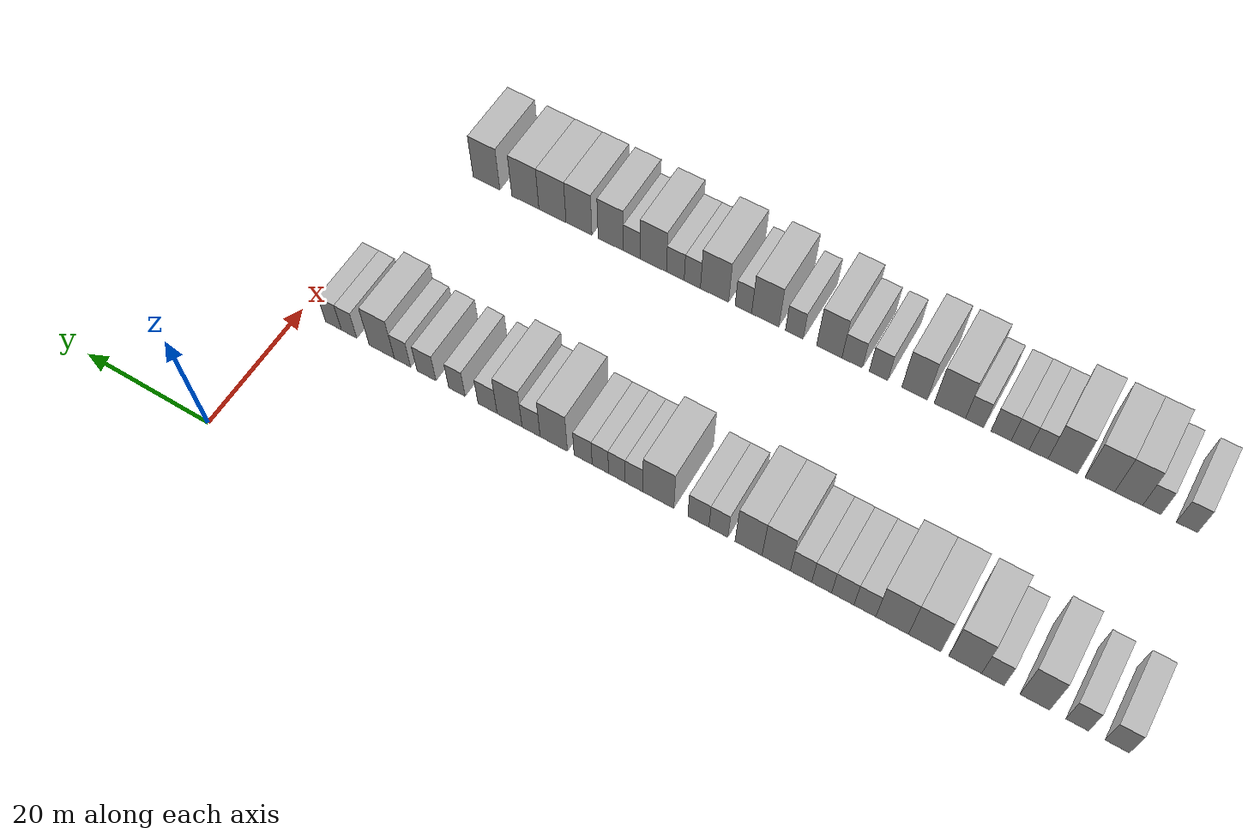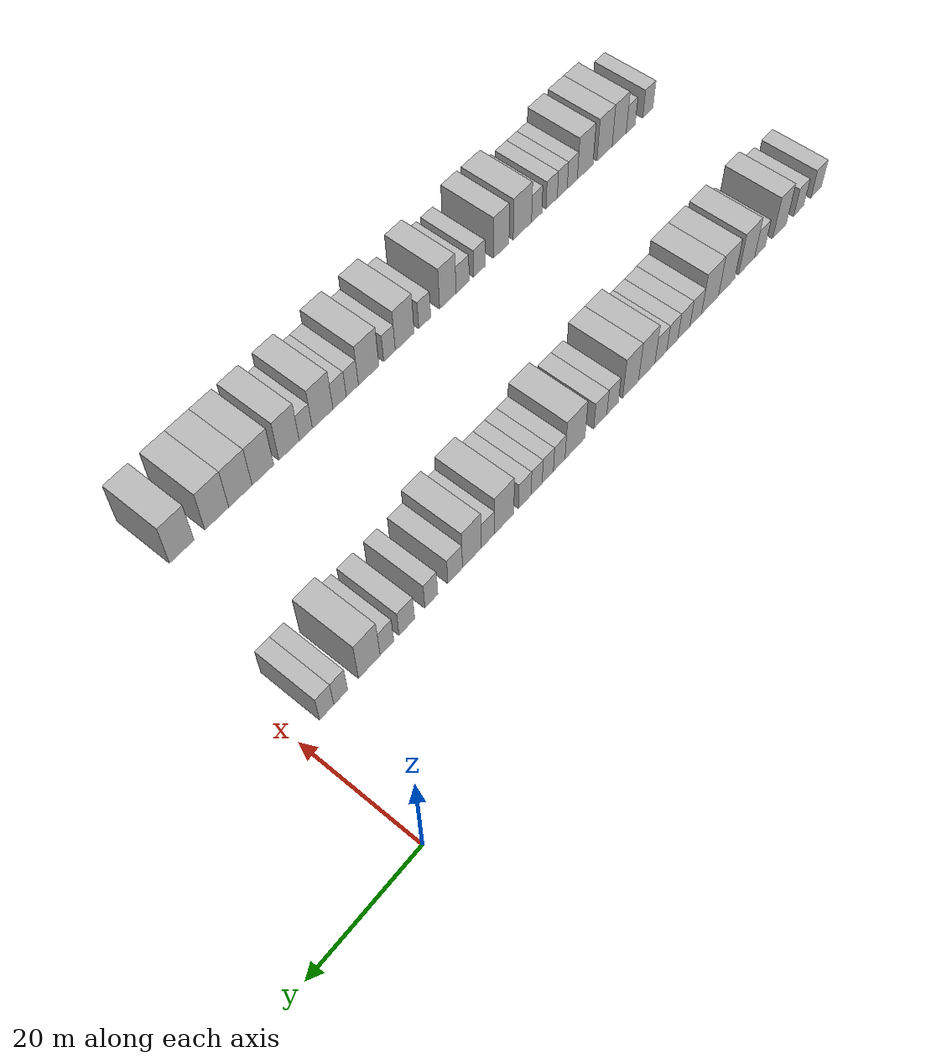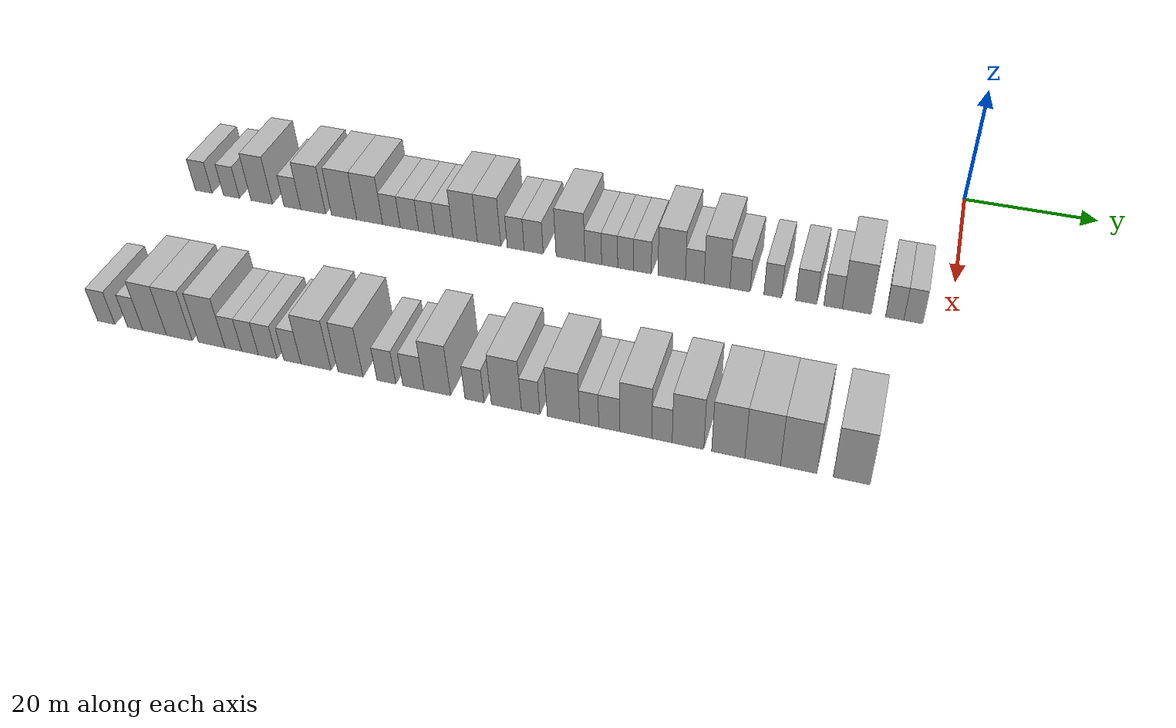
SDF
<sdf version="1.6">
 <world name="default">
  <model name="building_30">
   <static>1</static>
   <pose>25.0000 -115.3672 0 0.000000 0.000000 0.000000</pose>
   <link name="link">
    <pose>0 0 3.00 0 0 0</pose>
    <collision name="collision"><geometry><box><size>10.0000 2.9556 6.0000</size></box></geometry></collision>
    <visual name="visual">
     <cast_shadows>0</cast_shadows>
     <geometry><box><size>10.0000 2.9556 6.0000</size></box></geometry>
     <material>
      <script>
       <uri>model://HANNAS_wall/materials/scripts</uri>
       <uri>model://HANNAS_wall/materials/textures</uri>
       <name>vrc/HANNAS_wall</name>
      </script>
     </material>
    </visual>
   </link>
  </model>
  <model name="building_31">
   <static>1</static>
   <pose>25.0000 -110.4916 0 0.000000 0.000000 0.000000</pose>
   <link name="link">
    <pose>0 0 3.00 0 0 0</pose>
    <collision name="collision"><geometry><box><size>10.0000 2.7957 6.0000</size></box></geometry></collision>
    <visual name="visual">
     <cast_shadows>0</cast_shadows>
     <geometry><box><size>10.0000 2.7957 6.0000</size></box></geometry>
     <material>
      <script>
       <uri>model://HANNAS_wall/materials/scripts</uri>
       <uri>model://HANNAS_wall/materials/textures</uri>
       <name>vrc/HANNAS_wall</name>
      </script>
     </material>
    </visual>
   </link>
  </model>
  <model name="building_32">
   <static>1</static>
   <pose>25.0000 -105.2470 0 0.000000 0.000000 0.000000</pose>
   <link name="link">
    <pose>0 0 4.50 0 0 0</pose>
    <collision name="collision"><geometry><box><size>10.0000 3.6934 9.0000</size></box></geometry></collision>
    <visual name="visual">
     <cast_shadows>0</cast_shadows>
     <geometry><box><size>10.0000 3.6934 9.0000</size></box></geometry>
     <material>
      <script>
       <uri>model://HANNAS_wall/materials/scripts</uri>
       <uri>model://HANNAS_wall/materials/textures</uri>
       <name>vrc/HANNAS_wall</name>
      </script>
     </material>
    </visual>
   </link>
  </model>
  <model name="building_33">
   <static>1</static>
   <pose>25.0000 -99.9704 0 0.000000 0.000000 0.000000</pose>
   <link name="link">
    <pose>0 0 3.00 0 0 0</pose>
    <collision name="collision"><geometry><box><size>10.0000 2.8598 6.0000</size></box></geometry></collision>
    <visual name="visual">
     <cast_shadows>0</cast_shadows>
     <geometry><box><size>10.0000 2.8598 6.0000</size></box></geometry>
     <material>
      <script>
       <uri>model://HANNAS_wall/materials/scripts</uri>
       <uri>model://HANNAS_wall/materials/textures</uri>
       <name>vrc/HANNAS_wall</name>
      </script>
     </material>
    </visual>
   </link>
  </model>
  <model name="building_34">
   <static>1</static>
   <pose>25.0000 -96.4412 0 0.000000 0.000000 0.000000</pose>
   <link name="link">
    <pose>0 0 4.50 0 0 0</pose>
    <collision name="collision"><geometry><box><size>10.0000 4.1985 9.0000</size></box></geometry></collision>
    <visual name="visual">
     <cast_shadows>0</cast_shadows>
     <geometry><box><size>10.0000 4.1985 9.0000</size></box></geometry>
     <material>
      <script>
       <uri>model://HANNAS_wall/materials/scripts</uri>
       <uri>model://HANNAS_wall/materials/textures</uri>
       <name>vrc/HANNAS_wall</name>
      </script>
     </material>
    </visual>
   </link>
  </model>
  <model name="building_35">
   <static>1</static>
   <pose>25.0000 -91.2373 0 0.000000 0.000000 0.000000</pose>
   <link name="link">
    <pose>0 0 4.50 0 0 0</pose>
    <collision name="collision"><geometry><box><size>10.0000 4.2094 9.0000</size></box></geometry></collision>
    <visual name="visual">
     <cast_shadows>0</cast_shadows>
     <geometry><box><size>10.0000 4.2094 9.0000</size></box></geometry>
     <material>
      <script>
       <uri>model://HANNAS_wall/materials/scripts</uri>
       <uri>model://HANNAS_wall/materials/textures</uri>
       <name>vrc/HANNAS_wall</name>
      </script>
     </material>
    </visual>
   </link>
  </model>
  <model name="building_36">
   <static>1</static>
   <pose>25.0000 -86.9790 0 0.000000 0.000000 0.000000</pose>
   <link name="link">
    <pose>0 0 4.50 0 0 0</pose>
    <collision name="collision"><geometry><box><size>10.0000 4.3072 9.0000</size></box></geometry></collision>
    <visual name="visual">
     <cast_shadows>0</cast_shadows>
     <geometry><box><size>10.0000 4.3072 9.0000</size></box></geometry>
     <material>
      <script>
       <uri>model://HANNAS_wall/materials/scripts</uri>
       <uri>model://HANNAS_wall/materials/textures</uri>
       <name>vrc/HANNAS_wall</name>
      </script>
     </material>
    </visual>
   </link>
  </model>
  <model name="building_37">
   <static>1</static>
   <pose>25.0000 -83.3765 0 0.000000 0.000000 0.000000</pose>
   <link name="link">
    <pose>0 0 3.00 0 0 0</pose>
    <collision name="collision"><geometry><box><size>10.0000 2.8978 6.0000</size></box></geometry></collision>
    <visual name="visual">
     <cast_shadows>0</cast_shadows>
     <geometry><box><size>10.0000 2.8978 6.0000</size></box></geometry>
     <material>
      <script>
       <uri>model://HANNAS_wall/materials/scripts</uri>
       <uri>model://HANNAS_wall/materials/textures</uri>
       <name>vrc/HANNAS_wall</name>
      </script>
     </material>
    </visual>
   </link>
  </model>
  <model name="building_38">
   <static>1</static>
   <pose>25.0000 -80.4277 0 0.000000 0.000000 0.000000</pose>
   <link name="link">
    <pose>0 0 3.00 0 0 0</pose>
    <collision name="collision"><geometry><box><size>10.0000 2.9997 6.0000</size></box></geometry></collision>
    <visual name="visual">
     <cast_shadows>0</cast_shadows>
     <geometry><box><size>10.0000 2.9997 6.0000</size></box></geometry>
     <material>
      <script>
       <uri>model://HANNAS_wall/materials/scripts</uri>
       <uri>model://HANNAS_wall/materials/textures</uri>
       <name>vrc/HANNAS_wall</name>
      </script>
     </material>
    </visual>
   </link>
  </model>
  <model name="building_39">
   <static>1</static>
   <pose>25.0000 -77.5892 0 0.000000 0.000000 0.000000</pose>
   <link name="link">
    <pose>0 0 3.00 0 0 0</pose>
    <collision name="collision"><geometry><box><size>10.0000 2.6772 6.0000</size></box></geometry></collision>
    <visual name="visual">
     <cast_shadows>0</cast_shadows>
     <geometry><box><size>10.0000 2.6772 6.0000</size></box></geometry>
     <material>
      <script>
       <uri>model://HANNAS_wall/materials/scripts</uri>
       <uri>model://HANNAS_wall/materials/textures</uri>
       <name>vrc/HANNAS_wall</name>
      </script>
     </material>
    </visual>
   </link>
  </model>
  <model name="building_40">
   <static>1</static>
   <pose>25.0000 -74.8077 0 0.000000 0.000000 0.000000</pose>
   <link name="link">
    <pose>0 0 3.00 0 0 0</pose>
    <collision name="collision"><geometry><box><size>10.0000 2.8858 6.0000</size></box></geometry></collision>
    <visual name="visual">
     <cast_shadows>0</cast_shadows>
     <geometry><box><size>10.0000 2.8858 6.0000</size></box></geometry>
     <material>
      <script>
       <uri>model://HANNAS_wall/materials/scripts</uri>
       <uri>model://HANNAS_wall/materials/textures</uri>
       <name>vrc/HANNAS_wall</name>
      </script>
     </material>
    </visual>
   </link>
  </model>
  <model name="building_41">
   <static>1</static>
   <pose>25.0000 -71.4150 0 0.000000 0.000000 0.000000</pose>
   <link name="link">
    <pose>0 0 4.50 0 0 0</pose>
    <collision name="collision"><geometry><box><size>10.0000 3.8998 9.0000</size></box></geometry></collision>
    <visual name="visual">
     <cast_shadows>0</cast_shadows>
     <geometry><box><size>10.0000 3.8998 9.0000</size></box></geometry>
     <material>
      <script>
       <uri>model://HANNAS_wall/materials/scripts</uri>
       <uri>model://HANNAS_wall/materials/textures</uri>
       <name>vrc/HANNAS_wall</name>
      </script>
     </material>
    </visual>
   </link>
  </model>
  <model name="building_42">
   <static>1</static>
   <pose>25.0000 -67.5965 0 0.000000 0.000000 0.000000</pose>
   <link name="link">
    <pose>0 0 4.50 0 0 0</pose>
    <collision name="collision"><geometry><box><size>10.0000 3.7373 9.0000</size></box></geometry></collision>
    <visual name="visual">
     <cast_shadows>0</cast_shadows>
     <geometry><box><size>10.0000 3.7373 9.0000</size></box></geometry>
     <material>
      <script>
       <uri>model://HANNAS_wall/materials/scripts</uri>
       <uri>model://HANNAS_wall/materials/textures</uri>
       <name>vrc/HANNAS_wall</name>
      </script>
     </material>
    </visual>
   </link>
  </model>
  <model name="building_43">
   <static>1</static>
   <pose>25.0000 -63.3941 0 0.000000 0.000000 0.000000</pose>
   <link name="link">
    <pose>0 0 3.00 0 0 0</pose>
    <collision name="collision"><geometry><box><size>10.0000 2.6675 6.0000</size></box></geometry></collision>
    <visual name="visual">
     <cast_shadows>0</cast_shadows>
     <geometry><box><size>10.0000 2.6675 6.0000</size></box></geometry>
     <material>
      <script>
       <uri>model://HANNAS_wall/materials/scripts</uri>
       <uri>model://HANNAS_wall/materials/textures</uri>
       <name>vrc/HANNAS_wall</name>
      </script>
     </material>
    </visual>
   </link>
  </model>
  <model name="building_44">
   <static>1</static>
   <pose>25.0000 -60.5733 0 0.000000 0.000000 0.000000</pose>
   <link name="link">
    <pose>0 0 3.00 0 0 0</pose>
    <collision name="collision"><geometry><box><size>10.0000 2.9741 6.0000</size></box></geometry></collision>
    <visual name="visual">
     <cast_shadows>0</cast_shadows>
     <geometry><box><size>10.0000 2.9741 6.0000</size></box></geometry>
     <material>
      <script>
       <uri>model://HANNAS_wall/materials/scripts</uri>
       <uri>model://HANNAS_wall/materials/textures</uri>
       <name>vrc/HANNAS_wall</name>
      </script>
     </material>
    </visual>
   </link>
  </model>
  <model name="building_45">
   <static>1</static>
   <pose>25.0000 -54.8573 0 0.000000 0.000000 0.000000</pose>
   <link name="link">
    <pose>0 0 4.50 0 0 0</pose>
    <collision name="collision"><geometry><box><size>10.0000 4.4580 9.0000</size></box></geometry></collision>
    <visual name="visual">
     <cast_shadows>0</cast_shadows>
     <geometry><box><size>10.0000 4.4580 9.0000</size></box></geometry>
     <material>
      <script>
       <uri>model://HANNAS_wall/materials/scripts</uri>
       <uri>model://HANNAS_wall/materials/textures</uri>
       <name>vrc/HANNAS_wall</name>
      </script>
     </material>
    </visual>
   </link>
  </model>
  <model name="building_46">
   <static>1</static>
   <pose>25.0000 -51.3560 0 0.000000 0.000000 0.000000</pose>
   <link name="link">
    <pose>0 0 3.00 0 0 0</pose>
    <collision name="collision"><geometry><box><size>10.0000 2.5446 6.0000</size></box></geometry></collision>
    <visual name="visual">
     <cast_shadows>0</cast_shadows>
     <geometry><box><size>10.0000 2.5446 6.0000</size></box></geometry>
     <material>
      <script>
       <uri>model://HANNAS_wall/materials/scripts</uri>
       <uri>model://HANNAS_wall/materials/textures</uri>
       <name>vrc/HANNAS_wall</name>
      </script>
     </material>
    </visual>
   </link>
  </model>
  <model name="building_47">
   <static>1</static>
   <pose>25.0000 -48.8623 0 0.000000 0.000000 0.000000</pose>
   <link name="link">
    <pose>0 0 3.00 0 0 0</pose>
    <collision name="collision"><geometry><box><size>10.0000 2.4429 6.0000</size></box></geometry></collision>
    <visual name="visual">
     <cast_shadows>0</cast_shadows>
     <geometry><box><size>10.0000 2.4429 6.0000</size></box></geometry>
     <material>
      <script>
       <uri>model://HANNAS_wall/materials/scripts</uri>
       <uri>model://HANNAS_wall/materials/textures</uri>
       <name>vrc/HANNAS_wall</name>
      </script>
     </material>
    </visual>
   </link>
  </model>
  <model name="building_48">
   <static>1</static>
   <pose>25.0000 -46.4388 0 0.000000 0.000000 0.000000</pose>
   <link name="link">
    <pose>0 0 3.00 0 0 0</pose>
    <collision name="collision"><geometry><box><size>10.0000 2.4039 6.0000</size></box></geometry></collision>
    <visual name="visual">
     <cast_shadows>0</cast_shadows>
     <geometry><box><size>10.0000 2.4039 6.0000</size></box></geometry>
     <material>
      <script>
       <uri>model://HANNAS_wall/materials/scripts</uri>
       <uri>model://HANNAS_wall/materials/textures</uri>
       <name>vrc/HANNAS_wall</name>
      </script>
     </material>
    </visual>
   </link>
  </model>
  <model name="building_49">
   <static>1</static>
   <pose>25.0000 -43.9064 0 0.000000 0.000000 0.000000</pose>
   <link name="link">
    <pose>0 0 3.00 0 0 0</pose>
    <collision name="collision"><geometry><box><size>10.0000 2.6609 6.0000</size></box></geometry></collision>
    <visual name="visual">
     <cast_shadows>0</cast_shadows>
     <geometry><box><size>10.0000 2.6609 6.0000</size></box></geometry>
     <material>
      <script>
       <uri>model://HANNAS_wall/materials/scripts</uri>
       <uri>model://HANNAS_wall/materials/textures</uri>
       <name>vrc/HANNAS_wall</name>
      </script>
     </material>
    </visual>
   </link>
  </model>
  <model name="building_50">
   <static>1</static>
   <pose>25.0000 -39.5402 0 0.000000 0.000000 0.000000</pose>
   <link name="link">
    <pose>0 0 4.50 0 0 0</pose>
    <collision name="collision"><geometry><box><size>10.0000 4.0715 9.0000</size></box></geometry></collision>
    <visual name="visual">
     <cast_shadows>0</cast_shadows>
     <geometry><box><size>10.0000 4.0715 9.0000</size></box></geometry>
     <material>
      <script>
       <uri>model://HANNAS_wall/materials/scripts</uri>
       <uri>model://HANNAS_wall/materials/textures</uri>
       <name>vrc/HANNAS_wall</name>
      </script>
     </material>
    </visual>
   </link>
  </model>
  <model name="building_51">
   <static>1</static>
   <pose>25.0000 -36.1357 0 0.000000 0.000000 0.000000</pose>
   <link name="link">
    <pose>0 0 3.00 0 0 0</pose>
    <collision name="collision"><geometry><box><size>10.0000 2.7375 6.0000</size></box></geometry></collision>
    <visual name="visual">
     <cast_shadows>0</cast_shadows>
     <geometry><box><size>10.0000 2.7375 6.0000</size></box></geometry>
     <material>
      <script>
       <uri>model://HANNAS_wall/materials/scripts</uri>
       <uri>model://HANNAS_wall/materials/textures</uri>
       <name>vrc/HANNAS_wall</name>
      </script>
     </material>
    </visual>
   </link>
  </model>
  <model name="building_52">
   <static>1</static>
   <pose>25.0000 -32.8725 0 0.000000 0.000000 0.000000</pose>
   <link name="link">
    <pose>0 0 4.50 0 0 0</pose>
    <collision name="collision"><geometry><box><size>10.0000 3.7889 9.0000</size></box></geometry></collision>
    <visual name="visual">
     <cast_shadows>0</cast_shadows>
     <geometry><box><size>10.0000 3.7889 9.0000</size></box></geometry>
     <material>
      <script>
       <uri>model://HANNAS_wall/materials/scripts</uri>
       <uri>model://HANNAS_wall/materials/textures</uri>
       <name>vrc/HANNAS_wall</name>
      </script>
     </material>
    </visual>
   </link>
  </model>
  <model name="building_53">
   <static>1</static>
   <pose>25.0000 -29.5066 0 0.000000 0.000000 0.000000</pose>
   <link name="link">
    <pose>0 0 3.00 0 0 0</pose>
    <collision name="collision"><geometry><box><size>10.0000 2.9428 6.0000</size></box></geometry></collision>
    <visual name="visual">
     <cast_shadows>0</cast_shadows>
     <geometry><box><size>10.0000 2.9428 6.0000</size></box></geometry>
     <material>
      <script>
       <uri>model://HANNAS_wall/materials/scripts</uri>
       <uri>model://HANNAS_wall/materials/textures</uri>
       <name>vrc/HANNAS_wall</name>
      </script>
     </material>
    </visual>
   </link>
  </model>
  <model name="building_54">
   <static>1</static>
   <pose>25.0000 -24.7598 0 0.000000 0.000000 0.000000</pose>
   <link name="link">
    <pose>0 0 3.00 0 0 0</pose>
    <collision name="collision"><geometry><box><size>10.0000 2.5508 6.0000</size></box></geometry></collision>
    <visual name="visual">
     <cast_shadows>0</cast_shadows>
     <geometry><box><size>10.0000 2.5508 6.0000</size></box></geometry>
     <material>
      <script>
       <uri>model://HANNAS_wall/materials/scripts</uri>
       <uri>model://HANNAS_wall/materials/textures</uri>
       <name>vrc/HANNAS_wall</name>
      </script>
     </material>
    </visual>
   </link>
  </model>
  <model name="building_55">
   <static>1</static>
   <pose>25.0000 -19.9886 0 0.000000 0.000000 0.000000</pose>
   <link name="link">
    <pose>0 0 3.00 0 0 0</pose>
    <collision name="collision"><geometry><box><size>10.0000 2.9917 6.0000</size></box></geometry></collision>
    <visual name="visual">
     <cast_shadows>0</cast_shadows>
     <geometry><box><size>10.0000 2.9917 6.0000</size></box></geometry>
     <material>
      <script>
       <uri>model://HANNAS_wall/materials/scripts</uri>
       <uri>model://HANNAS_wall/materials/textures</uri>
       <name>vrc/HANNAS_wall</name>
      </script>
     </material>
    </visual>
   </link>
  </model>
  <model name="building_56">
   <static>1</static>
   <pose>25.0000 -16.1954 0 0.000000 0.000000 0.000000</pose>
   <link name="link">
    <pose>0 0 3.00 0 0 0</pose>
    <collision name="collision"><geometry><box><size>10.0000 2.5946 6.0000</size></box></geometry></collision>
    <visual name="visual">
     <cast_shadows>0</cast_shadows>
     <geometry><box><size>10.0000 2.5946 6.0000</size></box></geometry>
     <material>
      <script>
       <uri>model://HANNAS_wall/materials/scripts</uri>
       <uri>model://HANNAS_wall/materials/textures</uri>
       <name>vrc/HANNAS_wall</name>
      </script>
     </material>
    </visual>
   </link>
  </model>
  <model name="building_57">
   <static>1</static>
   <pose>25.0000 -12.8739 0 0.000000 0.000000 0.000000</pose>
   <link name="link">
    <pose>0 0 4.50 0 0 0</pose>
    <collision name="collision"><geometry><box><size>10.0000 4.0484 9.0000</size></box></geometry></collision>
    <visual name="visual">
     <cast_shadows>0</cast_shadows>
     <geometry><box><size>10.0000 4.0484 9.0000</size></box></geometry>
     <material>
      <script>
       <uri>model://HANNAS_wall/materials/scripts</uri>
       <uri>model://HANNAS_wall/materials/textures</uri>
       <name>vrc/HANNAS_wall</name>
      </script>
     </material>
    </visual>
   </link>
  </model>
  <model name="building_58">
   <static>1</static>
   <pose>25.0000 -7.5938 0 0.000000 0.000000 0.000000</pose>
   <link name="link">
    <pose>0 0 3.00 0 0 0</pose>
    <collision name="collision"><geometry><box><size>10.0000 2.5119 6.0000</size></box></geometry></collision>
    <visual name="visual">
     <cast_shadows>0</cast_shadows>
     <geometry><box><size>10.0000 2.5119 6.0000</size></box></geometry>
     <material>
      <script>
       <uri>model://HANNAS_wall/materials/scripts</uri>
       <uri>model://HANNAS_wall/materials/textures</uri>
       <name>vrc/HANNAS_wall</name>
      </script>
     </material>
    </visual>
   </link>
  </model>
  <model name="building_59">
   <static>1</static>
   <pose>25.0000 -5.0387 0 0.000000 0.000000 0.000000</pose>
   <link name="link">
    <pose>0 0 3.00 0 0 0</pose>
    <collision name="collision"><geometry><box><size>10.0000 2.5984 6.0000</size></box></geometry></collision>
    <visual name="visual">
     <cast_shadows>0</cast_shadows>
     <geometry><box><size>10.0000 2.5984 6.0000</size></box></geometry>
     <material>
      <script>
       <uri>model://HANNAS_wall/materials/scripts</uri>
       <uri>model://HANNAS_wall/materials/textures</uri>
       <name>vrc/HANNAS_wall</name>
      </script>
     </material>
    </visual>
   </link>
  </model>
  <model name="building_144">
   <static>1</static>
   <pose>55.0000 -112.6298 0 0.000000 0.000000 0.000000</pose>
   <link name="link">
    <pose>0 0 3.00 0 0 0</pose>
    <collision name="collision"><geometry><box><size>10.0000 2.7446 6.0000</size></box></geometry></collision>
    <visual name="visual">
     <cast_shadows>0</cast_shadows>
     <geometry><box><size>10.0000 2.7446 6.0000</size></box></geometry>
     <material>
      <script>
       <uri>model://HANNAS_wall/materials/scripts</uri>
       <uri>model://HANNAS_wall/materials/textures</uri>
       <name>vrc/HANNAS_wall</name>
      </script>
     </material>
    </visual>
   </link>
  </model>
  <model name="building_145">
   <static>1</static>
   <pose>55.0000 -108.0560 0 0.000000 0.000000 0.000000</pose>
   <link name="link">
    <pose>0 0 3.00 0 0 0</pose>
    <collision name="collision"><geometry><box><size>10.0000 2.4028 6.0000</size></box></geometry></collision>
    <visual name="visual">
     <cast_shadows>0</cast_shadows>
     <geometry><box><size>10.0000 2.4028 6.0000</size></box></geometry>
     <material>
      <script>
       <uri>model://HANNAS_wall/materials/scripts</uri>
       <uri>model://HANNAS_wall/materials/textures</uri>
       <name>vrc/HANNAS_wall</name>
      </script>
     </material>
    </visual>
   </link>
  </model>
  <model name="building_146">
   <static>1</static>
   <pose>55.0000 -105.0204 0 0.000000 0.000000 0.000000</pose>
   <link name="link">
    <pose>0 0 4.50 0 0 0</pose>
    <collision name="collision"><geometry><box><size>10.0000 3.6685 9.0000</size></box></geometry></collision>
    <visual name="visual">
     <cast_shadows>0</cast_shadows>
     <geometry><box><size>10.0000 3.6685 9.0000</size></box></geometry>
     <material>
      <script>
       <uri>model://HANNAS_wall/materials/scripts</uri>
       <uri>model://HANNAS_wall/materials/textures</uri>
       <name>vrc/HANNAS_wall</name>
      </script>
     </material>
    </visual>
   </link>
  </model>
  <model name="building_147">
   <static>1</static>
   <pose>55.0000 -101.2157 0 0.000000 0.000000 0.000000</pose>
   <link name="link">
    <pose>0 0 4.50 0 0 0</pose>
    <collision name="collision"><geometry><box><size>10.0000 3.9408 9.0000</size></box></geometry></collision>
    <visual name="visual">
     <cast_shadows>0</cast_shadows>
     <geometry><box><size>10.0000 3.9408 9.0000</size></box></geometry>
     <material>
      <script>
       <uri>model://HANNAS_wall/materials/scripts</uri>
       <uri>model://HANNAS_wall/materials/textures</uri>
       <name>vrc/HANNAS_wall</name>
      </script>
     </material>
    </visual>
   </link>
  </model>
  <model name="building_148">
   <static>1</static>
   <pose>55.0000 -96.2413 0 0.000000 0.000000 0.000000</pose>
   <link name="link">
    <pose>0 0 4.50 0 0 0</pose>
    <collision name="collision"><geometry><box><size>10.0000 4.0081 9.0000</size></box></geometry></collision>
    <visual name="visual">
     <cast_shadows>0</cast_shadows>
     <geometry><box><size>10.0000 4.0081 9.0000</size></box></geometry>
     <material>
      <script>
       <uri>model://HANNAS_wall/materials/scripts</uri>
       <uri>model://HANNAS_wall/materials/textures</uri>
       <name>vrc/HANNAS_wall</name>
      </script>
     </material>
    </visual>
   </link>
  </model>
  <model name="building_149">
   <static>1</static>
   <pose>55.0000 -92.9683 0 0.000000 0.000000 0.000000</pose>
   <link name="link">
    <pose>0 0 3.00 0 0 0</pose>
    <collision name="collision"><geometry><box><size>10.0000 2.5380 6.0000</size></box></geometry></collision>
    <visual name="visual">
     <cast_shadows>0</cast_shadows>
     <geometry><box><size>10.0000 2.5380 6.0000</size></box></geometry>
     <material>
      <script>
       <uri>model://HANNAS_wall/materials/scripts</uri>
       <uri>model://HANNAS_wall/materials/textures</uri>
       <name>vrc/HANNAS_wall</name>
      </script>
     </material>
    </visual>
   </link>
  </model>
  <model name="building_150">
   <static>1</static>
   <pose>55.0000 -90.4631 0 0.000000 0.000000 0.000000</pose>
   <link name="link">
    <pose>0 0 3.00 0 0 0</pose>
    <collision name="collision"><geometry><box><size>10.0000 2.4723 6.0000</size></box></geometry></collision>
    <visual name="visual">
     <cast_shadows>0</cast_shadows>
     <geometry><box><size>10.0000 2.4723 6.0000</size></box></geometry>
     <material>
      <script>
       <uri>model://HANNAS_wall/materials/scripts</uri>
       <uri>model://HANNAS_wall/materials/textures</uri>
       <name>vrc/HANNAS_wall</name>
      </script>
     </material>
    </visual>
   </link>
  </model>
  <model name="building_151">
   <static>1</static>
   <pose>55.0000 -87.8320 0 0.000000 0.000000 0.000000</pose>
   <link name="link">
    <pose>0 0 3.00 0 0 0</pose>
    <collision name="collision"><geometry><box><size>10.0000 2.7900 6.0000</size></box></geometry></collision>
    <visual name="visual">
     <cast_shadows>0</cast_shadows>
     <geometry><box><size>10.0000 2.7900 6.0000</size></box></geometry>
     <material>
      <script>
       <uri>model://HANNAS_wall/materials/scripts</uri>
       <uri>model://HANNAS_wall/materials/textures</uri>
       <name>vrc/HANNAS_wall</name>
      </script>
     </material>
    </visual>
   </link>
  </model>
  <model name="building_152">
   <static>1</static>
   <pose>55.0000 -84.1735 0 0.000000 0.000000 0.000000</pose>
   <link name="link">
    <pose>0 0 3.00 0 0 0</pose>
    <collision name="collision"><geometry><box><size>10.0000 2.5270 6.0000</size></box></geometry></collision>
    <visual name="visual">
     <cast_shadows>0</cast_shadows>
     <geometry><box><size>10.0000 2.5270 6.0000</size></box></geometry>
     <material>
      <script>
       <uri>model://HANNAS_wall/materials/scripts</uri>
       <uri>model://HANNAS_wall/materials/textures</uri>
       <name>vrc/HANNAS_wall</name>
      </script>
     </material>
    </visual>
   </link>
  </model>
  <model name="building_153">
   <static>1</static>
   <pose>55.0000 -80.7087 0 0.000000 0.000000 0.000000</pose>
   <link name="link">
    <pose>0 0 4.50 0 0 0</pose>
    <collision name="collision"><geometry><box><size>10.0000 4.4027 9.0000</size></box></geometry></collision>
    <visual name="visual">
     <cast_shadows>0</cast_shadows>
     <geometry><box><size>10.0000 4.4027 9.0000</size></box></geometry>
     <material>
      <script>
       <uri>model://HANNAS_wall/materials/scripts</uri>
       <uri>model://HANNAS_wall/materials/textures</uri>
       <name>vrc/HANNAS_wall</name>
      </script>
     </material>
    </visual>
   </link>
  </model>
  <model name="building_154">
   <static>1</static>
   <pose>55.0000 -75.6985 0 0.000000 0.000000 0.000000</pose>
   <link name="link">
    <pose>0 0 4.50 0 0 0</pose>
    <collision name="collision"><geometry><box><size>10.0000 3.6176 9.0000</size></box></geometry></collision>
    <visual name="visual">
     <cast_shadows>0</cast_shadows>
     <geometry><box><size>10.0000 3.6176 9.0000</size></box></geometry>
     <material>
      <script>
       <uri>model://HANNAS_wall/materials/scripts</uri>
       <uri>model://HANNAS_wall/materials/textures</uri>
       <name>vrc/HANNAS_wall</name>
      </script>
     </material>
    </visual>
   </link>
  </model>
  <model name="building_155">
   <static>1</static>
   <pose>55.0000 -70.5472 0 0.000000 0.000000 0.000000</pose>
   <link name="link">
    <pose>0 0 3.00 0 0 0</pose>
    <collision name="collision"><geometry><box><size>10.0000 2.6850 6.0000</size></box></geometry></collision>
    <visual name="visual">
     <cast_shadows>0</cast_shadows>
     <geometry><box><size>10.0000 2.6850 6.0000</size></box></geometry>
     <material>
      <script>
       <uri>model://HANNAS_wall/materials/scripts</uri>
       <uri>model://HANNAS_wall/materials/textures</uri>
       <name>vrc/HANNAS_wall</name>
      </script>
     </material>
    </visual>
   </link>
  </model>
  <model name="building_156">
   <static>1</static>
   <pose>55.0000 -66.7153 0 0.000000 0.000000 0.000000</pose>
   <link name="link">
    <pose>0 0 3.00 0 0 0</pose>
    <collision name="collision"><geometry><box><size>10.0000 2.9790 6.0000</size></box></geometry></collision>
    <visual name="visual">
     <cast_shadows>0</cast_shadows>
     <geometry><box><size>10.0000 2.9790 6.0000</size></box></geometry>
     <material>
      <script>
       <uri>model://HANNAS_wall/materials/scripts</uri>
       <uri>model://HANNAS_wall/materials/textures</uri>
       <name>vrc/HANNAS_wall</name>
      </script>
     </material>
    </visual>
   </link>
  </model>
  <model name="building_157">
   <static>1</static>
   <pose>55.0000 -63.3689 0 0.000000 0.000000 0.000000</pose>
   <link name="link">
    <pose>0 0 4.50 0 0 0</pose>
    <collision name="collision"><geometry><box><size>10.0000 3.7137 9.0000</size></box></geometry></collision>
    <visual name="visual">
     <cast_shadows>0</cast_shadows>
     <geometry><box><size>10.0000 3.7137 9.0000</size></box></geometry>
     <material>
      <script>
       <uri>model://HANNAS_wall/materials/scripts</uri>
       <uri>model://HANNAS_wall/materials/textures</uri>
       <name>vrc/HANNAS_wall</name>
      </script>
     </material>
    </visual>
   </link>
  </model>
  <model name="building_158">
   <static>1</static>
   <pose>55.0000 -58.1962 0 0.000000 0.000000 0.000000</pose>
   <link name="link">
    <pose>0 0 3.00 0 0 0</pose>
    <collision name="collision"><geometry><box><size>10.0000 2.6316 6.0000</size></box></geometry></collision>
    <visual name="visual">
     <cast_shadows>0</cast_shadows>
     <geometry><box><size>10.0000 2.6316 6.0000</size></box></geometry>
     <material>
      <script>
       <uri>model://HANNAS_wall/materials/scripts</uri>
       <uri>model://HANNAS_wall/materials/textures</uri>
       <name>vrc/HANNAS_wall</name>
      </script>
     </material>
    </visual>
   </link>
  </model>
  <model name="building_159">
   <static>1</static>
   <pose>55.0000 -53.8320 0 0.000000 0.000000 0.000000</pose>
   <link name="link">
    <pose>0 0 4.50 0 0 0</pose>
    <collision name="collision"><geometry><box><size>10.0000 4.0969 9.0000</size></box></geometry></collision>
    <visual name="visual">
     <cast_shadows>0</cast_shadows>
     <geometry><box><size>10.0000 4.0969 9.0000</size></box></geometry>
     <material>
      <script>
       <uri>model://HANNAS_wall/materials/scripts</uri>
       <uri>model://HANNAS_wall/materials/textures</uri>
       <name>vrc/HANNAS_wall</name>
      </script>
     </material>
    </visual>
   </link>
  </model>
  <model name="building_160">
   <static>1</static>
   <pose>55.0000 -50.5353 0 0.000000 0.000000 0.000000</pose>
   <link name="link">
    <pose>0 0 3.00 0 0 0</pose>
    <collision name="collision"><geometry><box><size>10.0000 2.4966 6.0000</size></box></geometry></collision>
    <visual name="visual">
     <cast_shadows>0</cast_shadows>
     <geometry><box><size>10.0000 2.4966 6.0000</size></box></geometry>
     <material>
      <script>
       <uri>model://HANNAS_wall/materials/scripts</uri>
       <uri>model://HANNAS_wall/materials/textures</uri>
       <name>vrc/HANNAS_wall</name>
      </script>
     </material>
    </visual>
   </link>
  </model>
  <model name="building_161">
   <static>1</static>
   <pose>55.0000 -46.1268 0 0.000000 0.000000 0.000000</pose>
   <link name="link">
    <pose>0 0 4.50 0 0 0</pose>
    <collision name="collision"><geometry><box><size>10.0000 4.3205 9.0000</size></box></geometry></collision>
    <visual name="visual">
     <cast_shadows>0</cast_shadows>
     <geometry><box><size>10.0000 4.3205 9.0000</size></box></geometry>
     <material>
      <script>
       <uri>model://HANNAS_wall/materials/scripts</uri>
       <uri>model://HANNAS_wall/materials/textures</uri>
       <name>vrc/HANNAS_wall</name>
      </script>
     </material>
    </visual>
   </link>
  </model>
  <model name="building_162">
   <static>1</static>
   <pose>55.0000 -42.7051 0 0.000000 0.000000 0.000000</pose>
   <link name="link">
    <pose>0 0 3.00 0 0 0</pose>
    <collision name="collision"><geometry><box><size>10.0000 2.5228 6.0000</size></box></geometry></collision>
    <visual name="visual">
     <cast_shadows>0</cast_shadows>
     <geometry><box><size>10.0000 2.5228 6.0000</size></box></geometry>
     <material>
      <script>
       <uri>model://HANNAS_wall/materials/scripts</uri>
       <uri>model://HANNAS_wall/materials/textures</uri>
       <name>vrc/HANNAS_wall</name>
      </script>
     </material>
    </visual>
   </link>
  </model>
  <model name="building_163">
   <static>1</static>
   <pose>55.0000 -40.0625 0 0.000000 0.000000 0.000000</pose>
   <link name="link">
    <pose>0 0 3.00 0 0 0</pose>
    <collision name="collision"><geometry><box><size>10.0000 2.7623 6.0000</size></box></geometry></collision>
    <visual name="visual">
     <cast_shadows>0</cast_shadows>
     <geometry><box><size>10.0000 2.7623 6.0000</size></box></geometry>
     <material>
      <script>
       <uri>model://HANNAS_wall/materials/scripts</uri>
       <uri>model://HANNAS_wall/materials/textures</uri>
       <name>vrc/HANNAS_wall</name>
      </script>
     </material>
    </visual>
   </link>
  </model>
  <model name="building_164">
   <static>1</static>
   <pose>55.0000 -36.5975 0 0.000000 0.000000 0.000000</pose>
   <link name="link">
    <pose>0 0 4.50 0 0 0</pose>
    <collision name="collision"><geometry><box><size>10.0000 4.1678 9.0000</size></box></geometry></collision>
    <visual name="visual">
     <cast_shadows>0</cast_shadows>
     <geometry><box><size>10.0000 4.1678 9.0000</size></box></geometry>
     <material>
      <script>
       <uri>model://HANNAS_wall/materials/scripts</uri>
       <uri>model://HANNAS_wall/materials/textures</uri>
       <name>vrc/HANNAS_wall</name>
      </script>
     </material>
    </visual>
   </link>
  </model>
  <model name="building_165">
   <static>1</static>
   <pose>55.0000 -33.2061 0 0.000000 0.000000 0.000000</pose>
   <link name="link">
    <pose>0 0 3.00 0 0 0</pose>
    <collision name="collision"><geometry><box><size>10.0000 2.6150 6.0000</size></box></geometry></collision>
    <visual name="visual">
     <cast_shadows>0</cast_shadows>
     <geometry><box><size>10.0000 2.6150 6.0000</size></box></geometry>
     <material>
      <script>
       <uri>model://HANNAS_wall/materials/scripts</uri>
       <uri>model://HANNAS_wall/materials/textures</uri>
       <name>vrc/HANNAS_wall</name>
      </script>
     </material>
    </visual>
   </link>
  </model>
  <model name="building_166">
   <static>1</static>
   <pose>55.0000 -29.8756 0 0.000000 0.000000 0.000000</pose>
   <link name="link">
    <pose>0 0 4.50 0 0 0</pose>
    <collision name="collision"><geometry><box><size>10.0000 4.0461 9.0000</size></box></geometry></collision>
    <visual name="visual">
     <cast_shadows>0</cast_shadows>
     <geometry><box><size>10.0000 4.0461 9.0000</size></box></geometry>
     <material>
      <script>
       <uri>model://HANNAS_wall/materials/scripts</uri>
       <uri>model://HANNAS_wall/materials/textures</uri>
       <name>vrc/HANNAS_wall</name>
      </script>
     </material>
    </visual>
   </link>
  </model>
  <model name="building_167">
   <static>1</static>
   <pose>55.0000 -24.7572 0 0.000000 0.000000 0.000000</pose>
   <link name="link">
    <pose>0 0 4.50 0 0 0</pose>
    <collision name="collision"><geometry><box><size>10.0000 4.1908 9.0000</size></box></geometry></collision>
    <visual name="visual">
     <cast_shadows>0</cast_shadows>
     <geometry><box><size>10.0000 4.1908 9.0000</size></box></geometry>
     <material>
      <script>
       <uri>model://HANNAS_wall/materials/scripts</uri>
       <uri>model://HANNAS_wall/materials/textures</uri>
       <name>vrc/HANNAS_wall</name>
      </script>
     </material>
    </visual>
   </link>
  </model>
  <model name="building_168">
   <static>1</static>
   <pose>55.0000 -20.4428 0 0.000000 0.000000 0.000000</pose>
   <link name="link">
    <pose>0 0 4.50 0 0 0</pose>
    <collision name="collision"><geometry><box><size>10.0000 4.4379 9.0000</size></box></geometry></collision>
    <visual name="visual">
     <cast_shadows>0</cast_shadows>
     <geometry><box><size>10.0000 4.4379 9.0000</size></box></geometry>
     <material>
      <script>
       <uri>model://HANNAS_wall/materials/scripts</uri>
       <uri>model://HANNAS_wall/materials/textures</uri>
       <name>vrc/HANNAS_wall</name>
      </script>
     </material>
    </visual>
   </link>
  </model>
  <model name="building_169">
   <static>1</static>
   <pose>55.0000 -15.9864 0 0.000000 0.000000 0.000000</pose>
   <link name="link">
    <pose>0 0 4.50 0 0 0</pose>
    <collision name="collision"><geometry><box><size>10.0000 4.4749 9.0000</size></box></geometry></collision>
    <visual name="visual">
     <cast_shadows>0</cast_shadows>
     <geometry><box><size>10.0000 4.4749 9.0000</size></box></geometry>
     <material>
      <script>
       <uri>model://HANNAS_wall/materials/scripts</uri>
       <uri>model://HANNAS_wall/materials/textures</uri>
       <name>vrc/HANNAS_wall</name>
      </script>
     </material>
    </visual>
   </link>
  </model>
  <model name="building_170">
   <static>1</static>
   <pose>55.0000 -9.5184 0 0.000000 0.000000 0.000000</pose>
   <link name="link">
    <pose>0 0 4.50 0 0 0</pose>
    <collision name="collision"><geometry><box><size>10.0000 4.4611 9.0000</size></box></geometry></collision>
    <visual name="visual">
     <cast_shadows>0</cast_shadows>
     <geometry><box><size>10.0000 4.4611 9.0000</size></box></geometry>
     <material>
      <script>
       <uri>model://HANNAS_wall/materials/scripts</uri>
       <uri>model://HANNAS_wall/materials/textures</uri>
       <name>vrc/HANNAS_wall</name>
      </script>
     </material>
    </visual>
   </link>
  </model>
 </world>
</sdf>
